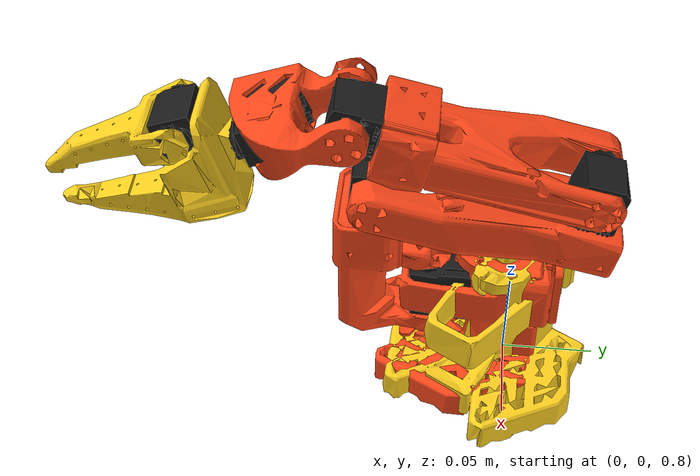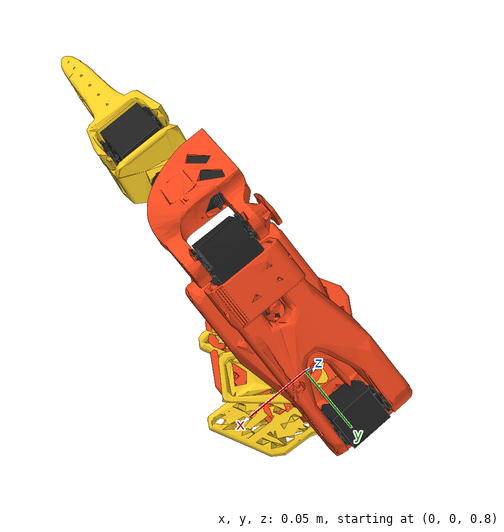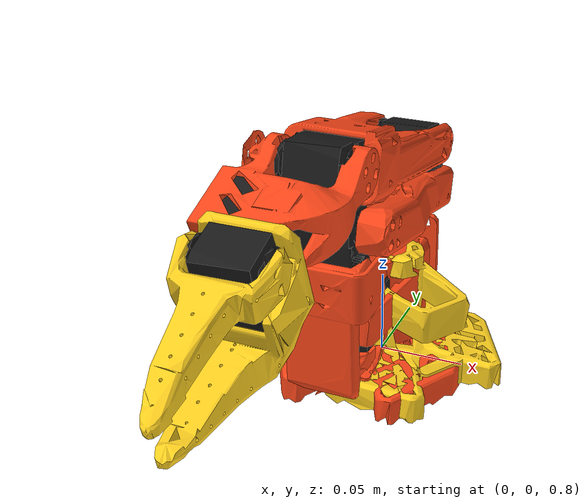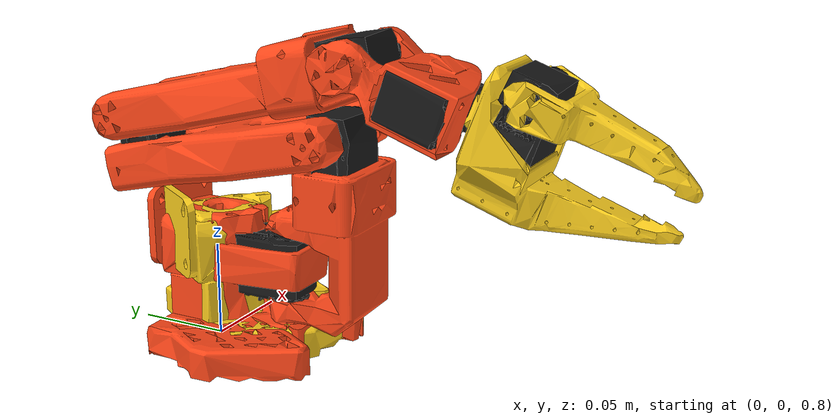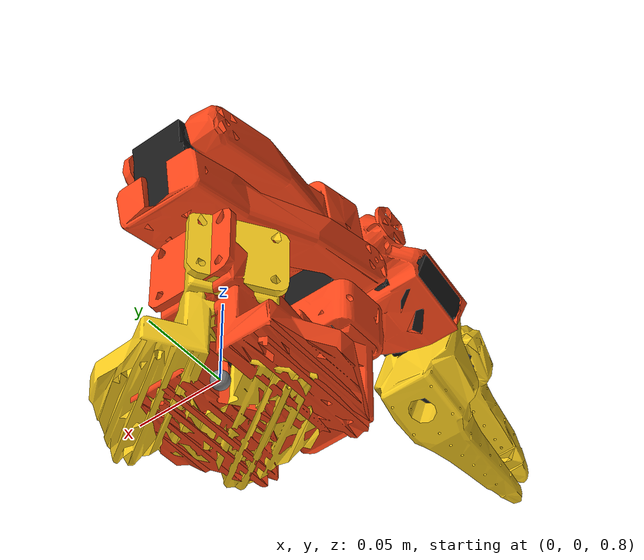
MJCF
<mujoco model="so_arm100">
  <default>
    <default class="robot">
      <default class="motor">
        <joint />
        <motor />
      </default>
      <default class="visual">
        <geom material="visualgeom" contype="0" conaffinity="0" group="2" />
      </default>
      <default class="collision">
        <geom material="collision_material" condim="3" contype="0" conaffinity="1" priority="1" group="1" solref="0.005 1" solimp="0.99 0.999 1e-05" friction="1 0.01 0.01" />
      </default>
    </default>
  </default>

  <compiler angle="radian" />

  <asset>
    <material name="3d_printed" rgba="1.0 0.82 0.12 1.0" />
    <material name="sts3215" rgba="0.1 0.1 0.1 1.0" />
    <material name="default_material" rgba="0.7 0.7 0.7 1" />
    <material name="collision_material" rgba="1.0 0.28 0.1 0.9" />
    <mesh name="Base.stl" file="assets/Base.stl" />
    <mesh name="Base_Motor.stl" file="assets/Base_Motor.stl" />
    <mesh name="Rotation_Pitch.stl" file="assets/Rotation_Pitch.stl" />
    <mesh name="Rotation_Pitch_Motor.stl" file="assets/Rotation_Pitch_Motor.stl" />
    <mesh name="Upper_Arm.stl" file="assets/Upper_Arm.stl" />
    <mesh name="Upper_Arm_Motor.stl" file="assets/Upper_Arm_Motor.stl" />
    <mesh name="Lower_Arm.stl" file="assets/Lower_Arm.stl" />
    <mesh name="Lower_Arm_Motor.stl" file="assets/Lower_Arm_Motor.stl" />
    <mesh name="Wrist_Pitch_Roll.stl" file="assets/Wrist_Pitch_Roll.stl" />
    <mesh name="Wrist_Pitch_Roll_Motor.stl" file="assets/Wrist_Pitch_Roll_Motor.stl" />
    <mesh name="Fixed_Jaw.stl" file="assets/Fixed_Jaw.stl" />
    <mesh name="Fixed_Jaw_Motor.stl" file="assets/Fixed_Jaw_Motor.stl" />
    <mesh name="Moving_Jaw.stl" file="assets/Moving_Jaw.stl" />
  </asset>

  <worldbody>
    <body name="base_link" pos="0.00000000 0.00000000 0.8" quat="1 0 0 0" childclass="robot">
      <freejoint name="floating_base" />
      <geom name="base_link_collision" pos="0 0 0" quat="1 0 0 0" type="mesh" mesh="Base.stl" class="collision" />
      <geom name="base_link_visual_0" pos="0 0 0" quat="0.8775825618903728 0.0 0.0 0.479425538604203" material="3d_printed" type="mesh" mesh="Base.stl" class="visual" />
      <geom name="base_link_visual_1" pos="0 0 0" quat="1 0 0 0" material="sts3215" type="mesh" mesh="Base_Motor.stl" class="visual" />
      <body name="shoulder" pos="0 -0.0452 0.0165" quat="0.7071090180427968 0.7071045443232222 0.0 0.0">
        <joint name="shoulder_pan" type="hinge" ref="0.0" class="motor" range="-2 2" axis="0 1 0" />
        <inertial pos="-9.07886e-05 0.0590972 0.031089" quat="1.0 0.0 0.0 0.0" mass="0.119226" diaginertia="5.94278e-05 5.89975e-05 3.13712e-05" />
        <geom name="shoulder_collision" pos="0 0 0" quat="1 0 0 0" type="mesh" mesh="Rotation_Pitch.stl" class="collision" />
        <geom name="shoulder_visual_0" pos="0 0 0" quat="1 0 0 0" material="3d_printed" type="mesh" mesh="Rotation_Pitch.stl" class="visual" />
        <geom name="shoulder_visual_1" pos="0 0 0" quat="1 0 0 0" material="sts3215" type="mesh" mesh="Rotation_Pitch_Motor.stl" class="visual" />
        <body name="upper_arm" pos="0 0.1025 0.0306" quat="0.6216099682706644 -0.7833269096274834 0.0 0.0">
          <joint name="shoulder_lift" type="hinge" ref="0.0" class="motor" range="0 3.5" axis="1 0 0" />
          <inertial pos="-1.72052e-05 0.0701802 0.00310545" quat="1.0 0.0 0.0 0.0" mass="0.162409" diaginertia="0.000213312 0.000167164 7.01522e-05" />
          <geom name="upper_arm_collision" pos="0 0 0" quat="1 0 0 0" type="mesh" mesh="Upper_Arm.stl" class="collision" />
          <geom name="upper_arm_visual_0" pos="0 0 0" quat="1 0 0 0" material="3d_printed" type="mesh" mesh="Upper_Arm.stl" class="visual" />
          <geom name="upper_arm_visual_1" pos="0 0 0" quat="1 0 0 0" material="sts3215" type="mesh" mesh="Upper_Arm_Motor.stl" class="visual" />
          <body name="lower_arm" pos="0 0.11257 0.028" quat="0.7071090180427968 0.7071045443232222 0.0 0.0">
            <joint name="elbow_flex" type="hinge" ref="0.0" class="motor" range="-3.14158 0" axis="1 0 0" />
            <inertial pos="-0.00339604 0.00137796 0.0768007" quat="1.0 0.0 0.0 0.0" mass="0.147968" diaginertia="0.000138803 0.000107748 4.84242e-05" />
            <geom name="lower_arm_collision" pos="0 0 0" quat="1 0 0 0" type="mesh" mesh="Lower_Arm.stl" class="collision" />
            <geom name="lower_arm_visual_0" pos="0 0 0" quat="1 0 0 0" material="3d_printed" type="mesh" mesh="Lower_Arm.stl" class="visual" />
            <geom name="lower_arm_visual_1" pos="0 0 0" quat="1 0 0 0" material="sts3215" type="mesh" mesh="Lower_Arm_Motor.stl" class="visual" />
            <body name="wrist" pos="0 0.0052 0.1349" quat="0.8775825618903728 -0.479425538604203 0.0 0.0">
              <joint name="wrist_flex" type="hinge" ref="0.0" class="motor" range="-2.5 1.2" axis="1 0 0" />
              <inertial pos="-0.00852653 -0.0352279 -2.34622e-05" quat="1.0 0.0 0.0 0.0" mass="0.0661321" diaginertia="3.45403e-05 2.39041e-05 1.94704e-05" />
              <geom name="wrist_collision" pos="0 0 0" quat="1 0 0 0" type="mesh" mesh="Wrist_Pitch_Roll.stl" class="collision" />
              <geom name="wrist_visual_0" pos="0 0 0" quat="1 0 0 0" material="3d_printed" type="mesh" mesh="Wrist_Pitch_Roll.stl" class="visual" />
              <geom name="wrist_visual_1" pos="0 0 0" quat="1 0 0 0" material="sts3215" type="mesh" mesh="Wrist_Pitch_Roll_Motor.stl" class="visual" />
              <body name="gripper" pos="0 -0.0601 0" quat="0.7071090180427968 0.0 0.7071045443232222 0.0">
                <joint name="wrist_roll" type="hinge" ref="0.0" class="motor" range="-3.14158 3.14158" axis="0 1 0" />
                <inertial pos="0.00552377 -0.0280167 0.000483583" quat="1.0 0.0 0.0 0.0" mass="0.0929859" diaginertia="5.03136e-05 4.64098e-05 2.72961e-05" />
                <geom name="gripper_visual_0" pos="0 0 0" quat="1 0 0 0" material="3d_printed" type="mesh" mesh="Fixed_Jaw.stl" class="visual" />
                <geom name="gripper_visual_1" pos="0 0 0" quat="1 0 0 0" material="sts3215" type="mesh" mesh="Fixed_Jaw_Motor.stl" class="visual" />
                <body name="jaw" pos="-0.0202 -0.0244 0" quat="6.326794896668469e-06 0.0 0.9999999999799858 0.0">
                  <joint name="gripper" type="hinge" ref="0.0" class="motor" range="-0.2 2.0" axis="0 0 1" />
                  <inertial pos="-0.00161745 -0.0303473 0.000449646" quat="1.0 0.0 0.0 0.0" mass="0.0202444" diaginertia="1.11265e-05 8.99651e-06 2.99548e-06" />
                  <geom name="jaw_visual" pos="0 0 0" quat="1 0 0 0" material="3d_printed" type="mesh" mesh="Moving_Jaw.stl" class="visual" />
                </body>
              </body>
            </body>
          </body>
        </body>
      </body>
      <site name="base_link_site" pos="0 0 0" quat="1 0 0 0" />
      <camera name="front_camera" mode="track" fovy="90.0" quat="4.329637285359678e-17 4.329637285359677e-17 0.7071067811865475 0.7071067811865476" pos="0.0 2.0 0.5" />
      <camera name="side_camera" mode="track" fovy="90.0" quat="-0.5 -0.4999999999999999 0.5 0.5000000000000001" pos="-2.0 0.0 0.5" />
    </body>
  </worldbody>

  <actuator>
    <position name="floating_base_ctrl" joint="floating_base" class="motor" />
    <position name="shoulder_pan_ctrl" joint="shoulder_pan" class="motor" />
    <position name="shoulder_lift_ctrl" joint="shoulder_lift" class="motor" />
    <position name="elbow_flex_ctrl" joint="elbow_flex" class="motor" />
    <position name="wrist_flex_ctrl" joint="wrist_flex" class="motor" />
    <position name="wrist_roll_ctrl" joint="wrist_roll" class="motor" />
    <position name="gripper_ctrl" joint="gripper" class="motor" />
  </actuator>

  <contact>
    <exclude body1="base_link" body2="shoulder" />
    <exclude body1="shoulder" body2="upper_arm" />
    <exclude body1="upper_arm" body2="lower_arm" />
    <exclude body1="lower_arm" body2="wrist" />
  </contact>

  <sensor>
    <framepos name="base_link_site_pos" objtype="site" objname="base_link_site" />
    <framequat name="base_link_site_quat" objtype="site" objname="base_link_site" />
    <framelinvel name="base_link_site_linvel" objtype="site" objname="base_link_site" />
    <frameangvel name="base_link_site_angvel" objtype="site" objname="base_link_site" />
    <velocimeter name="base_link_site_vel" site="base_link_site" />
  </sensor>
</mujoco>
